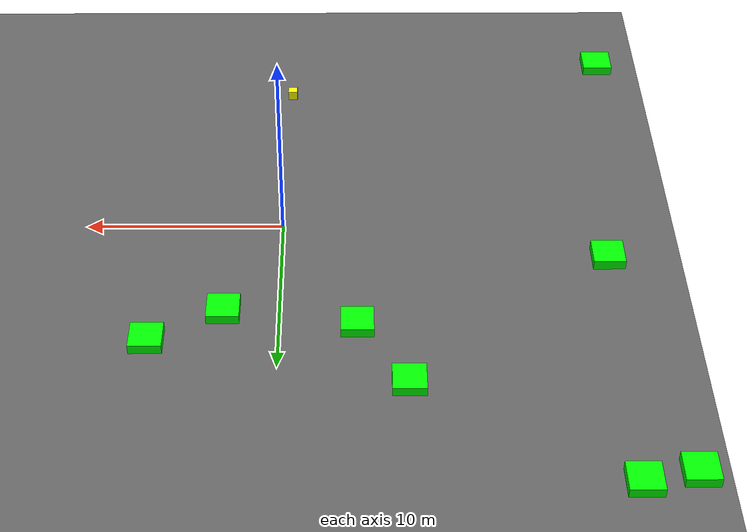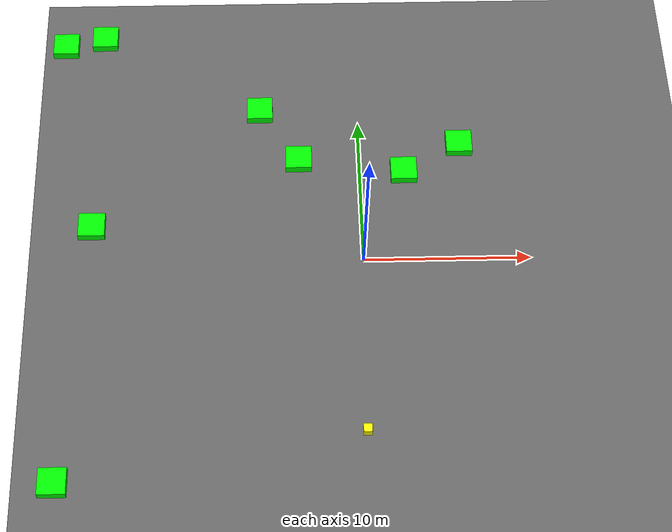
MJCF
<mujoco model="baseline_lvl4_obs8_seed3004">
    <compiler angle="degree" coordinate="local" inertiafromgeom="true"/>
    <option integrator="RK4" timestep="0.01"/>

    <asset>
        <texture builtin="gradient" height="100" rgb1="0.6 0.8 1" rgb2="0 0 0" type="skybox" width="100"/>
        <texture name="floor_texture" type="2d" builtin="checker" width="100" height="100" rgb1="0 0 0" rgb2="0.8 0.8 0.8"/>
        <material name="MatPlane" reflectance="0.5" shininess="1" specular="1" texrepeat="10 10" texture="floor_texture"/>
    </asset>

    <!-- Excluding the contact between the agent and the goal, and the agent and the floor -->
    <contact>
        <exclude body1="agent" body2="goal"/>
        <exclude body1 = "agent" body2 = "floor"/>
    </contact>

    <extension>
        <plugin plugin = "mujoco.pid">
            <instance name = "pid1">
                <config key="kp" value="2"/>
                <config key="ki" value="0"/>
                <config key="kd" value="55"/>
            </instance>
        </plugin>
    </extension>

    <worldbody>
        <light cutoff="100" diffuse="1 1 1" dir="-0 0 -1.3" directional="true" exponent="1" pos="0 0 1.3" specular=".1 .1 .1"/>
        <body name="floor" pos="0 0 0">
            <geom name="floor_geom" type="plane" size="20 20 0.1" material="MatPlane"/>
        </body>

        <!-- Goal -->
        <body name="goal" pos="12.000 -12.000 0">
            <geom name="goal_geom" type="plane" size="0.5 0.5 1" pos="0 0 0" rgba="1 0 0 1"/>
        </body>

        <!-- Agent -->
        <body name="agent" pos="-0.205 -11.272 0.25">
            <joint name="j1" type="slide" axis ="1 0 0 "/>
            <joint name="j2" type="slide" axis ="0 1 0 "/>
            <geom name="agent_geom" type="box" size="0.25 0.25 0.250" rgba="1 1 0 1"/>
        </body>

    <body name="obstacle1" pos="-16.105 16.980 0.250">
      <geom name="obstacle1_geom" type="box"
            size="0.800 0.800 0.250"
            rgba="0 1 0 1"/>
    </body>
    <body name="obstacle2" pos="6.221 8.301 0.250">
      <geom name="obstacle2_geom" type="box"
            size="0.800 0.800 0.250"
            rgba="0 1 0 1"/>
    </body>
    <body name="obstacle3" pos="-16.318 2.499 0.250">
      <geom name="obstacle3_geom" type="box"
            size="0.800 0.800 0.250"
            rgba="0 1 0 1"/>
    </body>
    <body name="obstacle4" pos="-17.688 -14.183 0.250">
      <geom name="obstacle4_geom" type="box"
            size="0.800 0.800 0.250"
            rgba="0 1 0 1"/>
    </body>
    <body name="obstacle5" pos="-3.759 7.246 0.250">
      <geom name="obstacle5_geom" type="box"
            size="0.800 0.800 0.250"
            rgba="0 1 0 1"/>
    </body>
    <body name="obstacle6" pos="2.694 6.316 0.250">
      <geom name="obstacle6_geom" type="box"
            size="0.800 0.800 0.250"
            rgba="0 1 0 1"/>
    </body>
    <body name="obstacle7" pos="-6.145 11.036 0.250">
      <geom name="obstacle7_geom" type="box"
            size="0.800 0.800 0.250"
            rgba="0 1 0 1"/>
    </body>
    <body name="obstacle8" pos="-18.610 16.429 0.250">
      <geom name="obstacle8_geom" type="box"
            size="0.800 0.800 0.250"
            rgba="0 1 0 1"/>
    </body>
    </worldbody>

    <actuator>
        <plugin joint="j1" plugin="mujoco.pid" instance="pid1" />
        <plugin joint="j2" plugin="mujoco.pid" instance="pid1"/>
    </actuator>

  <sensor>
    <distance name="dist1" geom1="agent_geom" geom2="obstacle1_geom" cutoff="1.5"/>
    <distance name="dist2" geom1="agent_geom" geom2="obstacle2_geom" cutoff="1.5"/>
    <distance name="dist3" geom1="agent_geom" geom2="obstacle3_geom" cutoff="1.5"/>
    <distance name="dist4" geom1="agent_geom" geom2="obstacle4_geom" cutoff="1.5"/>
    <distance name="dist5" geom1="agent_geom" geom2="obstacle5_geom" cutoff="1.5"/>
    <distance name="dist6" geom1="agent_geom" geom2="obstacle6_geom" cutoff="1.5"/>
    <distance name="dist7" geom1="agent_geom" geom2="obstacle7_geom" cutoff="1.5"/>
    <distance name="dist8" geom1="agent_geom" geom2="obstacle8_geom" cutoff="1.5"/>
  </sensor>
</mujoco>
